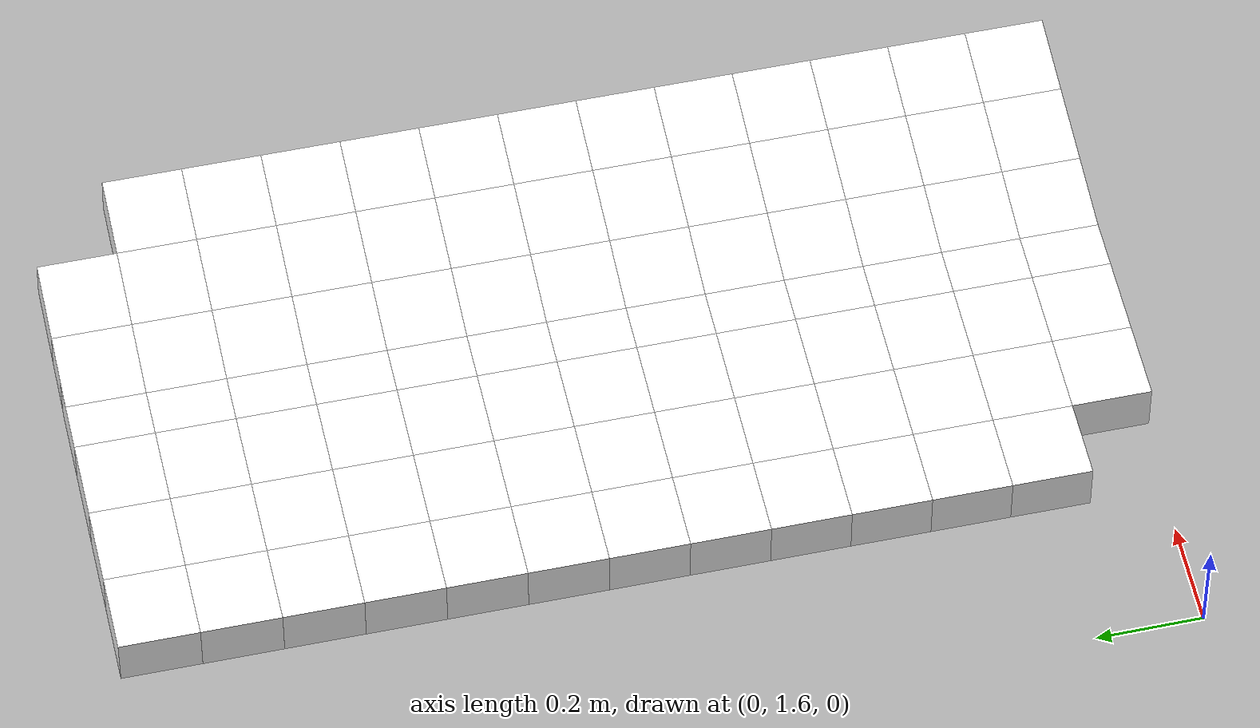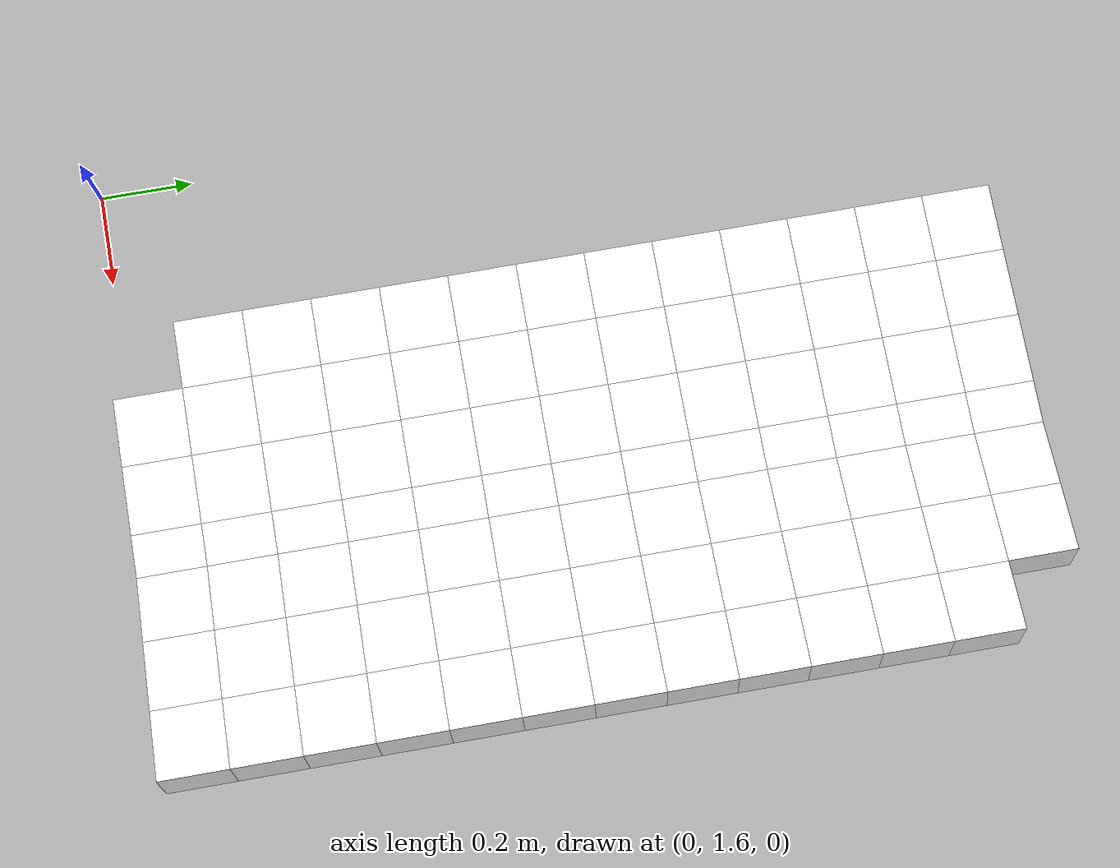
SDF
<sdf version="1.7">
 <world name="default">
  <include><uri>model://sun</uri></include>
  <model name="static_environment">
   <static>true</static>
   <link name="region_157">
    <pose>0.5499999999999994 1.65 0.0 0.0 0.0 0.0</pose>
    <collision name="region_157_collision">
     <geometry><box><size>0.15 0.15 0.1</size></box></geometry>
     <surface><friction><ode><mu>1.0</mu><mu2>1.0</mu2></ode></friction></surface>
    </collision>
    <visual name="region_157_visual">
     <geometry><box><size>0.15 0.15 0.1</size></box></geometry>
     <material><ambient>1.0 1.0 1.0 1.0</ambient><diffuse>1.0 1.0 1.0 1.0</diffuse></material>
    </visual>
   </link>
   <link name="region_158">
    <pose>0.6999999999999993 1.65 0.0 0.0 0.0 0.0</pose>
    <collision name="region_158_collision">
     <geometry><box><size>0.15 0.15 0.1</size></box></geometry>
     <surface><friction><ode><mu>1.0</mu><mu2>1.0</mu2></ode></friction></surface>
    </collision>
    <visual name="region_158_visual">
     <geometry><box><size>0.15 0.15 0.1</size></box></geometry>
     <material><ambient>1.0 1.0 1.0 1.0</ambient><diffuse>1.0 1.0 1.0 1.0</diffuse></material>
    </visual>
   </link>
   <link name="region_159">
    <pose>0.8499999999999992 1.65 0.0 0.0 0.0 0.0</pose>
    <collision name="region_159_collision">
     <geometry><box><size>0.15 0.15 0.1</size></box></geometry>
     <surface><friction><ode><mu>1.0</mu><mu2>1.0</mu2></ode></friction></surface>
    </collision>
    <visual name="region_159_visual">
     <geometry><box><size>0.15 0.15 0.1</size></box></geometry>
     <material><ambient>1.0 1.0 1.0 1.0</ambient><diffuse>1.0 1.0 1.0 1.0</diffuse></material>
    </visual>
   </link>
   <link name="region_176">
    <pose>0.39999999999999947 1.7999999999999998 0.0 0.0 0.0 0.0</pose>
    <collision name="region_176_collision">
     <geometry><box><size>0.15 0.15 0.1</size></box></geometry>
     <surface><friction><ode><mu>1.0</mu><mu2>1.0</mu2></ode></friction></surface>
    </collision>
    <visual name="region_176_visual">
     <geometry><box><size>0.15 0.15 0.1</size></box></geometry>
     <material><ambient>1.0 1.0 1.0 1.0</ambient><diffuse>1.0 1.0 1.0 1.0</diffuse></material>
    </visual>
   </link>
   <link name="region_177">
    <pose>0.5499999999999994 1.7999999999999998 0.0 0.0 0.0 0.0</pose>
    <collision name="region_177_collision">
     <geometry><box><size>0.15 0.15 0.1</size></box></geometry>
     <surface><friction><ode><mu>1.0</mu><mu2>1.0</mu2></ode></friction></surface>
    </collision>
    <visual name="region_177_visual">
     <geometry><box><size>0.15 0.15 0.1</size></box></geometry>
     <material><ambient>1.0 1.0 1.0 1.0</ambient><diffuse>1.0 1.0 1.0 1.0</diffuse></material>
    </visual>
   </link>
   <link name="region_178">
    <pose>0.6999999999999993 1.7999999999999998 0.0 0.0 0.0 0.0</pose>
    <collision name="region_178_collision">
     <geometry><box><size>0.15 0.15 0.1</size></box></geometry>
     <surface><friction><ode><mu>1.0</mu><mu2>1.0</mu2></ode></friction></surface>
    </collision>
    <visual name="region_178_visual">
     <geometry><box><size>0.15 0.15 0.1</size></box></geometry>
     <material><ambient>1.0 1.0 1.0 1.0</ambient><diffuse>1.0 1.0 1.0 1.0</diffuse></material>
    </visual>
   </link>
   <link name="region_179">
    <pose>0.8499999999999992 1.7999999999999998 0.0 0.0 0.0 0.0</pose>
    <collision name="region_179_collision">
     <geometry><box><size>0.15 0.15 0.1</size></box></geometry>
     <surface><friction><ode><mu>1.0</mu><mu2>1.0</mu2></ode></friction></surface>
    </collision>
    <visual name="region_179_visual">
     <geometry><box><size>0.15 0.15 0.1</size></box></geometry>
     <material><ambient>1.0 1.0 1.0 1.0</ambient><diffuse>1.0 1.0 1.0 1.0</diffuse></material>
    </visual>
   </link>
   <link name="region_196">
    <pose>0.39999999999999947 1.9499999999999997 0.0 0.0 0.0 0.0</pose>
    <collision name="region_196_collision">
     <geometry><box><size>0.15 0.15 0.1</size></box></geometry>
     <surface><friction><ode><mu>1.0</mu><mu2>1.0</mu2></ode></friction></surface>
    </collision>
    <visual name="region_196_visual">
     <geometry><box><size>0.15 0.15 0.1</size></box></geometry>
     <material><ambient>1.0 1.0 1.0 1.0</ambient><diffuse>1.0 1.0 1.0 1.0</diffuse></material>
    </visual>
   </link>
   <link name="region_197">
    <pose>0.5499999999999994 1.9499999999999997 0.0 0.0 0.0 0.0</pose>
    <collision name="region_197_collision">
     <geometry><box><size>0.15 0.15 0.1</size></box></geometry>
     <surface><friction><ode><mu>1.0</mu><mu2>1.0</mu2></ode></friction></surface>
    </collision>
    <visual name="region_197_visual">
     <geometry><box><size>0.15 0.15 0.1</size></box></geometry>
     <material><ambient>1.0 1.0 1.0 1.0</ambient><diffuse>1.0 1.0 1.0 1.0</diffuse></material>
    </visual>
   </link>
   <link name="region_198">
    <pose>0.6999999999999993 1.9499999999999997 0.0 0.0 0.0 0.0</pose>
    <collision name="region_198_collision">
     <geometry><box><size>0.15 0.15 0.1</size></box></geometry>
     <surface><friction><ode><mu>1.0</mu><mu2>1.0</mu2></ode></friction></surface>
    </collision>
    <visual name="region_198_visual">
     <geometry><box><size>0.15 0.15 0.1</size></box></geometry>
     <material><ambient>1.0 1.0 1.0 1.0</ambient><diffuse>1.0 1.0 1.0 1.0</diffuse></material>
    </visual>
   </link>
   <link name="region_199">
    <pose>0.8499999999999992 1.9499999999999997 0.0 0.0 0.0 0.0</pose>
    <collision name="region_199_collision">
     <geometry><box><size>0.15 0.15 0.1</size></box></geometry>
     <surface><friction><ode><mu>1.0</mu><mu2>1.0</mu2></ode></friction></surface>
    </collision>
    <visual name="region_199_visual">
     <geometry><box><size>0.15 0.15 0.1</size></box></geometry>
     <material><ambient>1.0 1.0 1.0 1.0</ambient><diffuse>1.0 1.0 1.0 1.0</diffuse></material>
    </visual>
   </link>
   <link name="region_216">
    <pose>0.39999999999999947 2.0999999999999996 0.0 0.0 0.0 0.0</pose>
    <collision name="region_216_collision">
     <geometry><box><size>0.15 0.15 0.1</size></box></geometry>
     <surface><friction><ode><mu>1.0</mu><mu2>1.0</mu2></ode></friction></surface>
    </collision>
    <visual name="region_216_visual">
     <geometry><box><size>0.15 0.15 0.1</size></box></geometry>
     <material><ambient>1.0 1.0 1.0 1.0</ambient><diffuse>1.0 1.0 1.0 1.0</diffuse></material>
    </visual>
   </link>
   <link name="region_217">
    <pose>0.5499999999999994 2.0999999999999996 0.0 0.0 0.0 0.0</pose>
    <collision name="region_217_collision">
     <geometry><box><size>0.15 0.15 0.1</size></box></geometry>
     <surface><friction><ode><mu>1.0</mu><mu2>1.0</mu2></ode></friction></surface>
    </collision>
    <visual name="region_217_visual">
     <geometry><box><size>0.15 0.15 0.1</size></box></geometry>
     <material><ambient>1.0 1.0 1.0 1.0</ambient><diffuse>1.0 1.0 1.0 1.0</diffuse></material>
    </visual>
   </link>
   <link name="region_218">
    <pose>0.6999999999999993 2.0999999999999996 0.0 0.0 0.0 0.0</pose>
    <collision name="region_218_collision">
     <geometry><box><size>0.15 0.15 0.1</size></box></geometry>
     <surface><friction><ode><mu>1.0</mu><mu2>1.0</mu2></ode></friction></surface>
    </collision>
    <visual name="region_218_visual">
     <geometry><box><size>0.15 0.15 0.1</size></box></geometry>
     <material><ambient>1.0 1.0 1.0 1.0</ambient><diffuse>1.0 1.0 1.0 1.0</diffuse></material>
    </visual>
   </link>
   <link name="region_219">
    <pose>0.8499999999999992 2.0999999999999996 0.0 0.0 0.0 0.0</pose>
    <collision name="region_219_collision">
     <geometry><box><size>0.15 0.15 0.1</size></box></geometry>
     <surface><friction><ode><mu>1.0</mu><mu2>1.0</mu2></ode></friction></surface>
    </collision>
    <visual name="region_219_visual">
     <geometry><box><size>0.15 0.15 0.1</size></box></geometry>
     <material><ambient>1.0 1.0 1.0 1.0</ambient><diffuse>1.0 1.0 1.0 1.0</diffuse></material>
    </visual>
   </link>
   <link name="region_236">
    <pose>0.39999999999999947 2.2499999999999996 0.0 0.0 0.0 0.0</pose>
    <collision name="region_236_collision">
     <geometry><box><size>0.15 0.15 0.1</size></box></geometry>
     <surface><friction><ode><mu>1.0</mu><mu2>1.0</mu2></ode></friction></surface>
    </collision>
    <visual name="region_236_visual">
     <geometry><box><size>0.15 0.15 0.1</size></box></geometry>
     <material><ambient>1.0 1.0 1.0 1.0</ambient><diffuse>1.0 1.0 1.0 1.0</diffuse></material>
    </visual>
   </link>
   <link name="region_237">
    <pose>0.5499999999999994 2.2499999999999996 0.0 0.0 0.0 0.0</pose>
    <collision name="region_237_collision">
     <geometry><box><size>0.15 0.15 0.1</size></box></geometry>
     <surface><friction><ode><mu>1.0</mu><mu2>1.0</mu2></ode></friction></surface>
    </collision>
    <visual name="region_237_visual">
     <geometry><box><size>0.15 0.15 0.1</size></box></geometry>
     <material><ambient>1.0 1.0 1.0 1.0</ambient><diffuse>1.0 1.0 1.0 1.0</diffuse></material>
    </visual>
   </link>
   <link name="region_238">
    <pose>0.6999999999999993 2.2499999999999996 0.0 0.0 0.0 0.0</pose>
    <collision name="region_238_collision">
     <geometry><box><size>0.15 0.15 0.1</size></box></geometry>
     <surface><friction><ode><mu>1.0</mu><mu2>1.0</mu2></ode></friction></surface>
    </collision>
    <visual name="region_238_visual">
     <geometry><box><size>0.15 0.15 0.1</size></box></geometry>
     <material><ambient>1.0 1.0 1.0 1.0</ambient><diffuse>1.0 1.0 1.0 1.0</diffuse></material>
    </visual>
   </link>
   <link name="region_239">
    <pose>0.8499999999999992 2.2499999999999996 0.0 0.0 0.0 0.0</pose>
    <collision name="region_239_collision">
     <geometry><box><size>0.15 0.15 0.1</size></box></geometry>
     <surface><friction><ode><mu>1.0</mu><mu2>1.0</mu2></ode></friction></surface>
    </collision>
    <visual name="region_239_visual">
     <geometry><box><size>0.15 0.15 0.1</size></box></geometry>
     <material><ambient>1.0 1.0 1.0 1.0</ambient><diffuse>1.0 1.0 1.0 1.0</diffuse></material>
    </visual>
   </link>
   <link name="region_256">
    <pose>0.39999999999999947 2.3999999999999995 0.0 0.0 0.0 0.0</pose>
    <collision name="region_256_collision">
     <geometry><box><size>0.15 0.15 0.1</size></box></geometry>
     <surface><friction><ode><mu>1.0</mu><mu2>1.0</mu2></ode></friction></surface>
    </collision>
    <visual name="region_256_visual">
     <geometry><box><size>0.15 0.15 0.1</size></box></geometry>
     <material><ambient>1.0 1.0 1.0 1.0</ambient><diffuse>1.0 1.0 1.0 1.0</diffuse></material>
    </visual>
   </link>
   <link name="region_257">
    <pose>0.5499999999999994 2.3999999999999995 0.0 0.0 0.0 0.0</pose>
    <collision name="region_257_collision">
     <geometry><box><size>0.15 0.15 0.1</size></box></geometry>
     <surface><friction><ode><mu>1.0</mu><mu2>1.0</mu2></ode></friction></surface>
    </collision>
    <visual name="region_257_visual">
     <geometry><box><size>0.15 0.15 0.1</size></box></geometry>
     <material><ambient>1.0 1.0 1.0 1.0</ambient><diffuse>1.0 1.0 1.0 1.0</diffuse></material>
    </visual>
   </link>
   <link name="region_258">
    <pose>0.6999999999999993 2.3999999999999995 0.0 0.0 0.0 0.0</pose>
    <collision name="region_258_collision">
     <geometry><box><size>0.15 0.15 0.1</size></box></geometry>
     <surface><friction><ode><mu>1.0</mu><mu2>1.0</mu2></ode></friction></surface>
    </collision>
    <visual name="region_258_visual">
     <geometry><box><size>0.15 0.15 0.1</size></box></geometry>
     <material><ambient>1.0 1.0 1.0 1.0</ambient><diffuse>1.0 1.0 1.0 1.0</diffuse></material>
    </visual>
   </link>
   <link name="region_259">
    <pose>0.8499999999999992 2.3999999999999995 0.0 0.0 0.0 0.0</pose>
    <collision name="region_259_collision">
     <geometry><box><size>0.15 0.15 0.1</size></box></geometry>
     <surface><friction><ode><mu>1.0</mu><mu2>1.0</mu2></ode></friction></surface>
    </collision>
    <visual name="region_259_visual">
     <geometry><box><size>0.15 0.15 0.1</size></box></geometry>
     <material><ambient>1.0 1.0 1.0 1.0</ambient><diffuse>1.0 1.0 1.0 1.0</diffuse></material>
    </visual>
   </link>
   <link name="region_276">
    <pose>0.39999999999999947 2.5499999999999994 0.0 0.0 0.0 0.0</pose>
    <collision name="region_276_collision">
     <geometry><box><size>0.15 0.15 0.1</size></box></geometry>
     <surface><friction><ode><mu>1.0</mu><mu2>1.0</mu2></ode></friction></surface>
    </collision>
    <visual name="region_276_visual">
     <geometry><box><size>0.15 0.15 0.1</size></box></geometry>
     <material><ambient>1.0 1.0 1.0 1.0</ambient><diffuse>1.0 1.0 1.0 1.0</diffuse></material>
    </visual>
   </link>
   <link name="region_277">
    <pose>0.5499999999999994 2.5499999999999994 0.0 0.0 0.0 0.0</pose>
    <collision name="region_277_collision">
     <geometry><box><size>0.15 0.15 0.1</size></box></geometry>
     <surface><friction><ode><mu>1.0</mu><mu2>1.0</mu2></ode></friction></surface>
    </collision>
    <visual name="region_277_visual">
     <geometry><box><size>0.15 0.15 0.1</size></box></geometry>
     <material><ambient>1.0 1.0 1.0 1.0</ambient><diffuse>1.0 1.0 1.0 1.0</diffuse></material>
    </visual>
   </link>
   <link name="region_278">
    <pose>0.6999999999999993 2.5499999999999994 0.0 0.0 0.0 0.0</pose>
    <collision name="region_278_collision">
     <geometry><box><size>0.15 0.15 0.1</size></box></geometry>
     <surface><friction><ode><mu>1.0</mu><mu2>1.0</mu2></ode></friction></surface>
    </collision>
    <visual name="region_278_visual">
     <geometry><box><size>0.15 0.15 0.1</size></box></geometry>
     <material><ambient>1.0 1.0 1.0 1.0</ambient><diffuse>1.0 1.0 1.0 1.0</diffuse></material>
    </visual>
   </link>
   <link name="region_279">
    <pose>0.8499999999999992 2.5499999999999994 0.0 0.0 0.0 0.0</pose>
    <collision name="region_279_collision">
     <geometry><box><size>0.15 0.15 0.1</size></box></geometry>
     <surface><friction><ode><mu>1.0</mu><mu2>1.0</mu2></ode></friction></surface>
    </collision>
    <visual name="region_279_visual">
     <geometry><box><size>0.15 0.15 0.1</size></box></geometry>
     <material><ambient>1.0 1.0 1.0 1.0</ambient><diffuse>1.0 1.0 1.0 1.0</diffuse></material>
    </visual>
   </link>
   <link name="region_296">
    <pose>0.39999999999999947 2.6999999999999997 0.0 0.0 0.0 0.0</pose>
    <collision name="region_296_collision">
     <geometry><box><size>0.15 0.15 0.1</size></box></geometry>
     <surface><friction><ode><mu>1.0</mu><mu2>1.0</mu2></ode></friction></surface>
    </collision>
    <visual name="region_296_visual">
     <geometry><box><size>0.15 0.15 0.1</size></box></geometry>
     <material><ambient>1.0 1.0 1.0 1.0</ambient><diffuse>1.0 1.0 1.0 1.0</diffuse></material>
    </visual>
   </link>
   <link name="region_297">
    <pose>0.5499999999999994 2.6999999999999997 0.0 0.0 0.0 0.0</pose>
    <collision name="region_297_collision">
     <geometry><box><size>0.15 0.15 0.1</size></box></geometry>
     <surface><friction><ode><mu>1.0</mu><mu2>1.0</mu2></ode></friction></surface>
    </collision>
    <visual name="region_297_visual">
     <geometry><box><size>0.15 0.15 0.1</size></box></geometry>
     <material><ambient>1.0 1.0 1.0 1.0</ambient><diffuse>1.0 1.0 1.0 1.0</diffuse></material>
    </visual>
   </link>
   <link name="region_298">
    <pose>0.6999999999999993 2.6999999999999997 0.0 0.0 0.0 0.0</pose>
    <collision name="region_298_collision">
     <geometry><box><size>0.15 0.15 0.1</size></box></geometry>
     <surface><friction><ode><mu>1.0</mu><mu2>1.0</mu2></ode></friction></surface>
    </collision>
    <visual name="region_298_visual">
     <geometry><box><size>0.15 0.15 0.1</size></box></geometry>
     <material><ambient>1.0 1.0 1.0 1.0</ambient><diffuse>1.0 1.0 1.0 1.0</diffuse></material>
    </visual>
   </link>
   <link name="region_299">
    <pose>0.8499999999999992 2.6999999999999997 0.0 0.0 0.0 0.0</pose>
    <collision name="region_299_collision">
     <geometry><box><size>0.15 0.15 0.1</size></box></geometry>
     <surface><friction><ode><mu>1.0</mu><mu2>1.0</mu2></ode></friction></surface>
    </collision>
    <visual name="region_299_visual">
     <geometry><box><size>0.15 0.15 0.1</size></box></geometry>
     <material><ambient>1.0 1.0 1.0 1.0</ambient><diffuse>1.0 1.0 1.0 1.0</diffuse></material>
    </visual>
   </link>
   <link name="region_316">
    <pose>0.39999999999999947 2.8499999999999996 0.0 0.0 0.0 0.0</pose>
    <collision name="region_316_collision">
     <geometry><box><size>0.15 0.15 0.1</size></box></geometry>
     <surface><friction><ode><mu>1.0</mu><mu2>1.0</mu2></ode></friction></surface>
    </collision>
    <visual name="region_316_visual">
     <geometry><box><size>0.15 0.15 0.1</size></box></geometry>
     <material><ambient>1.0 1.0 1.0 1.0</ambient><diffuse>1.0 1.0 1.0 1.0</diffuse></material>
    </visual>
   </link>
   <link name="region_317">
    <pose>0.5499999999999994 2.8499999999999996 0.0 0.0 0.0 0.0</pose>
    <collision name="region_317_collision">
     <geometry><box><size>0.15 0.15 0.1</size></box></geometry>
     <surface><friction><ode><mu>1.0</mu><mu2>1.0</mu2></ode></friction></surface>
    </collision>
    <visual name="region_317_visual">
     <geometry><box><size>0.15 0.15 0.1</size></box></geometry>
     <material><ambient>1.0 1.0 1.0 1.0</ambient><diffuse>1.0 1.0 1.0 1.0</diffuse></material>
    </visual>
   </link>
   <link name="region_318">
    <pose>0.6999999999999993 2.8499999999999996 0.0 0.0 0.0 0.0</pose>
    <collision name="region_318_collision">
     <geometry><box><size>0.15 0.15 0.1</size></box></geometry>
     <surface><friction><ode><mu>1.0</mu><mu2>1.0</mu2></ode></friction></surface>
    </collision>
    <visual name="region_318_visual">
     <geometry><box><size>0.15 0.15 0.1</size></box></geometry>
     <material><ambient>1.0 1.0 1.0 1.0</ambient><diffuse>1.0 1.0 1.0 1.0</diffuse></material>
    </visual>
   </link>
   <link name="region_319">
    <pose>0.8499999999999992 2.8499999999999996 0.0 0.0 0.0 0.0</pose>
    <collision name="region_319_collision">
     <geometry><box><size>0.15 0.15 0.1</size></box></geometry>
     <surface><friction><ode><mu>1.0</mu><mu2>1.0</mu2></ode></friction></surface>
    </collision>
    <visual name="region_319_visual">
     <geometry><box><size>0.15 0.15 0.1</size></box></geometry>
     <material><ambient>1.0 1.0 1.0 1.0</ambient><diffuse>1.0 1.0 1.0 1.0</diffuse></material>
    </visual>
   </link>
   <link name="region_336">
    <pose>0.39999999999999947 2.9999999999999996 0.0 0.0 0.0 0.0</pose>
    <collision name="region_336_collision">
     <geometry><box><size>0.15 0.15 0.1</size></box></geometry>
     <surface><friction><ode><mu>1.0</mu><mu2>1.0</mu2></ode></friction></surface>
    </collision>
    <visual name="region_336_visual">
     <geometry><box><size>0.15 0.15 0.1</size></box></geometry>
     <material><ambient>1.0 1.0 1.0 1.0</ambient><diffuse>1.0 1.0 1.0 1.0</diffuse></material>
    </visual>
   </link>
   <link name="region_337">
    <pose>0.5499999999999994 2.9999999999999996 0.0 0.0 0.0 0.0</pose>
    <collision name="region_337_collision">
     <geometry><box><size>0.15 0.15 0.1</size></box></geometry>
     <surface><friction><ode><mu>1.0</mu><mu2>1.0</mu2></ode></friction></surface>
    </collision>
    <visual name="region_337_visual">
     <geometry><box><size>0.15 0.15 0.1</size></box></geometry>
     <material><ambient>1.0 1.0 1.0 1.0</ambient><diffuse>1.0 1.0 1.0 1.0</diffuse></material>
    </visual>
   </link>
   <link name="region_338">
    <pose>0.6999999999999993 2.9999999999999996 0.0 0.0 0.0 0.0</pose>
    <collision name="region_338_collision">
     <geometry><box><size>0.15 0.15 0.1</size></box></geometry>
     <surface><friction><ode><mu>1.0</mu><mu2>1.0</mu2></ode></friction></surface>
    </collision>
    <visual name="region_338_visual">
     <geometry><box><size>0.15 0.15 0.1</size></box></geometry>
     <material><ambient>1.0 1.0 1.0 1.0</ambient><diffuse>1.0 1.0 1.0 1.0</diffuse></material>
    </visual>
   </link>
   <link name="region_339">
    <pose>0.8499999999999992 2.9999999999999996 0.0 0.0 0.0 0.0</pose>
    <collision name="region_339_collision">
     <geometry><box><size>0.15 0.15 0.1</size></box></geometry>
     <surface><friction><ode><mu>1.0</mu><mu2>1.0</mu2></ode></friction></surface>
    </collision>
    <visual name="region_339_visual">
     <geometry><box><size>0.15 0.15 0.1</size></box></geometry>
     <material><ambient>1.0 1.0 1.0 1.0</ambient><diffuse>1.0 1.0 1.0 1.0</diffuse></material>
    </visual>
   </link>
   <link name="region_356">
    <pose>0.39999999999999947 3.1499999999999995 0.0 0.0 0.0 0.0</pose>
    <collision name="region_356_collision">
     <geometry><box><size>0.15 0.15 0.1</size></box></geometry>
     <surface><friction><ode><mu>1.0</mu><mu2>1.0</mu2></ode></friction></surface>
    </collision>
    <visual name="region_356_visual">
     <geometry><box><size>0.15 0.15 0.1</size></box></geometry>
     <material><ambient>1.0 1.0 1.0 1.0</ambient><diffuse>1.0 1.0 1.0 1.0</diffuse></material>
    </visual>
   </link>
   <link name="region_357">
    <pose>0.5499999999999994 3.1499999999999995 0.0 0.0 0.0 0.0</pose>
    <collision name="region_357_collision">
     <geometry><box><size>0.15 0.15 0.1</size></box></geometry>
     <surface><friction><ode><mu>1.0</mu><mu2>1.0</mu2></ode></friction></surface>
    </collision>
    <visual name="region_357_visual">
     <geometry><box><size>0.15 0.15 0.1</size></box></geometry>
     <material><ambient>1.0 1.0 1.0 1.0</ambient><diffuse>1.0 1.0 1.0 1.0</diffuse></material>
    </visual>
   </link>
   <link name="region_358">
    <pose>0.6999999999999993 3.1499999999999995 0.0 0.0 0.0 0.0</pose>
    <collision name="region_358_collision">
     <geometry><box><size>0.15 0.15 0.1</size></box></geometry>
     <surface><friction><ode><mu>1.0</mu><mu2>1.0</mu2></ode></friction></surface>
    </collision>
    <visual name="region_358_visual">
     <geometry><box><size>0.15 0.15 0.1</size></box></geometry>
     <material><ambient>1.0 1.0 1.0 1.0</ambient><diffuse>1.0 1.0 1.0 1.0</diffuse></material>
    </visual>
   </link>
   <link name="region_359">
    <pose>0.8499999999999992 3.1499999999999995 0.0 0.0 0.0 0.0</pose>
    <collision name="region_359_collision">
     <geometry><box><size>0.15 0.15 0.1</size></box></geometry>
     <surface><friction><ode><mu>1.0</mu><mu2>1.0</mu2></ode></friction></surface>
    </collision>
    <visual name="region_359_visual">
     <geometry><box><size>0.15 0.15 0.1</size></box></geometry>
     <material><ambient>1.0 1.0 1.0 1.0</ambient><diffuse>1.0 1.0 1.0 1.0</diffuse></material>
    </visual>
   </link>
   <link name="region_376">
    <pose>0.39999999999999947 3.2999999999999994 0.0 0.0 0.0 0.0</pose>
    <collision name="region_376_collision">
     <geometry><box><size>0.15 0.15 0.1</size></box></geometry>
     <surface><friction><ode><mu>1.0</mu><mu2>1.0</mu2></ode></friction></surface>
    </collision>
    <visual name="region_376_visual">
     <geometry><box><size>0.15 0.15 0.1</size></box></geometry>
     <material><ambient>1.0 1.0 1.0 1.0</ambient><diffuse>1.0 1.0 1.0 1.0</diffuse></material>
    </visual>
   </link>
   <link name="region_377">
    <pose>0.5499999999999994 3.2999999999999994 0.0 0.0 0.0 0.0</pose>
    <collision name="region_377_collision">
     <geometry><box><size>0.15 0.15 0.1</size></box></geometry>
     <surface><friction><ode><mu>1.0</mu><mu2>1.0</mu2></ode></friction></surface>
    </collision>
    <visual name="region_377_visual">
     <geometry><box><size>0.15 0.15 0.1</size></box></geometry>
     <material><ambient>1.0 1.0 1.0 1.0</ambient><diffuse>1.0 1.0 1.0 1.0</diffuse></material>
    </visual>
   </link>
   <link name="region_378">
    <pose>0.6999999999999993 3.2999999999999994 0.0 0.0 0.0 0.0</pose>
    <collision name="region_378_collision">
     <geometry><box><size>0.15 0.15 0.1</size></box></geometry>
     <surface><friction><ode><mu>1.0</mu><mu2>1.0</mu2></ode></friction></surface>
    </collision>
    <visual name="region_378_visual">
     <geometry><box><size>0.15 0.15 0.1</size></box></geometry>
     <material><ambient>1.0 1.0 1.0 1.0</ambient><diffuse>1.0 1.0 1.0 1.0</diffuse></material>
    </visual>
   </link>
   <link name="region_379">
    <pose>0.8499999999999992 3.2999999999999994 0.0 0.0 0.0 0.0</pose>
    <collision name="region_379_collision">
     <geometry><box><size>0.15 0.15 0.1</size></box></geometry>
     <surface><friction><ode><mu>1.0</mu><mu2>1.0</mu2></ode></friction></surface>
    </collision>
    <visual name="region_379_visual">
     <geometry><box><size>0.15 0.15 0.1</size></box></geometry>
     <material><ambient>1.0 1.0 1.0 1.0</ambient><diffuse>1.0 1.0 1.0 1.0</diffuse></material>
    </visual>
   </link>
   <link name="region_396">
    <pose>0.39999999999999947 3.4499999999999993 0.0 0.0 0.0 0.0</pose>
    <collision name="region_396_collision">
     <geometry><box><size>0.15 0.15 0.1</size></box></geometry>
     <surface><friction><ode><mu>1.0</mu><mu2>1.0</mu2></ode></friction></surface>
    </collision>
    <visual name="region_396_visual">
     <geometry><box><size>0.15 0.15 0.1</size></box></geometry>
     <material><ambient>1.0 1.0 1.0 1.0</ambient><diffuse>1.0 1.0 1.0 1.0</diffuse></material>
    </visual>
   </link>
   <link name="region_397">
    <pose>0.5499999999999994 3.4499999999999993 0.0 0.0 0.0 0.0</pose>
    <collision name="region_397_collision">
     <geometry><box><size>0.15 0.15 0.1</size></box></geometry>
     <surface><friction><ode><mu>1.0</mu><mu2>1.0</mu2></ode></friction></surface>
    </collision>
    <visual name="region_397_visual">
     <geometry><box><size>0.15 0.15 0.1</size></box></geometry>
     <material><ambient>1.0 1.0 1.0 1.0</ambient><diffuse>1.0 1.0 1.0 1.0</diffuse></material>
    </visual>
   </link>
   <link name="region_398">
    <pose>0.6999999999999993 3.4499999999999993 0.0 0.0 0.0 0.0</pose>
    <collision name="region_398_collision">
     <geometry><box><size>0.15 0.15 0.1</size></box></geometry>
     <surface><friction><ode><mu>1.0</mu><mu2>1.0</mu2></ode></friction></surface>
    </collision>
    <visual name="region_398_visual">
     <geometry><box><size>0.15 0.15 0.1</size></box></geometry>
     <material><ambient>1.0 1.0 1.0 1.0</ambient><diffuse>1.0 1.0 1.0 1.0</diffuse></material>
    </visual>
   </link>
   <link name="region_399">
    <pose>0.8499999999999992 3.4499999999999993 0.0 0.0 0.0 0.0</pose>
    <collision name="region_399_collision">
     <geometry><box><size>0.15 0.15 0.1</size></box></geometry>
     <surface><friction><ode><mu>1.0</mu><mu2>1.0</mu2></ode></friction></surface>
    </collision>
    <visual name="region_399_visual">
     <geometry><box><size>0.15 0.15 0.1</size></box></geometry>
     <material><ambient>1.0 1.0 1.0 1.0</ambient><diffuse>1.0 1.0 1.0 1.0</diffuse></material>
    </visual>
   </link>
   <link name="region_470">
    <pose>0.9427610316211048 1.65 0.01255032956896146 0.0 -0.175 0.0</pose>
    <collision name="region_470_collision">
     <geometry><box><size>0.15 0.15 0.1</size></box></geometry>
     <surface><friction><ode><mu>1.0</mu><mu2>1.0</mu2></ode></friction></surface>
    </collision>
    <visual name="region_470_visual">
     <geometry><box><size>0.15 0.15 0.1</size></box></geometry>
     <material><ambient>1.0 1.0 1.0 1.0</ambient><diffuse>1.0 1.0 1.0 1.0</diffuse></material>
    </visual>
   </link>
   <link name="region_471">
    <pose>1.0904700124568447 1.65 0.03866655020800086 0.0 -0.175 0.0</pose>
    <collision name="region_471_collision">
     <geometry><box><size>0.15 0.15 0.1</size></box></geometry>
     <surface><friction><ode><mu>1.0</mu><mu2>1.0</mu2></ode></friction></surface>
    </collision>
    <visual name="region_471_visual">
     <geometry><box><size>0.15 0.15 0.1</size></box></geometry>
     <material><ambient>1.0 1.0 1.0 1.0</ambient><diffuse>1.0 1.0 1.0 1.0</diffuse></material>
    </visual>
   </link>
   <link name="region_472">
    <pose>1.2381789932925846 1.65 0.06478277084704026 0.0 -0.175 0.0</pose>
    <collision name="region_472_collision">
     <geometry><box><size>0.15 0.15 0.1</size></box></geometry>
     <surface><friction><ode><mu>1.0</mu><mu2>1.0</mu2></ode></friction></surface>
    </collision>
    <visual name="region_472_visual">
     <geometry><box><size>0.15 0.15 0.1</size></box></geometry>
     <material><ambient>1.0 1.0 1.0 1.0</ambient><diffuse>1.0 1.0 1.0 1.0</diffuse></material>
    </visual>
   </link>
   <link name="region_480">
    <pose>0.9427610316211048 1.7999999999999998 0.01255032956896146 0.0 -0.175 0.0</pose>
    <collision name="region_480_collision">
     <geometry><box><size>0.15 0.15 0.1</size></box></geometry>
     <surface><friction><ode><mu>1.0</mu><mu2>1.0</mu2></ode></friction></surface>
    </collision>
    <visual name="region_480_visual">
     <geometry><box><size>0.15 0.15 0.1</size></box></geometry>
     <material><ambient>1.0 1.0 1.0 1.0</ambient><diffuse>1.0 1.0 1.0 1.0</diffuse></material>
    </visual>
   </link>
   <link name="region_481">
    <pose>1.0904700124568447 1.7999999999999998 0.03866655020800086 0.0 -0.175 0.0</pose>
    <collision name="region_481_collision">
     <geometry><box><size>0.15 0.15 0.1</size></box></geometry>
     <surface><friction><ode><mu>1.0</mu><mu2>1.0</mu2></ode></friction></surface>
    </collision>
    <visual name="region_481_visual">
     <geometry><box><size>0.15 0.15 0.1</size></box></geometry>
     <material><ambient>1.0 1.0 1.0 1.0</ambient><diffuse>1.0 1.0 1.0 1.0</diffuse></material>
    </visual>
   </link>
   <link name="region_482">
    <pose>1.2381789932925846 1.7999999999999998 0.06478277084704026 0.0 -0.175 0.0</pose>
    <collision name="region_482_collision">
     <geometry><box><size>0.15 0.15 0.1</size></box></geometry>
     <surface><friction><ode><mu>1.0</mu><mu2>1.0</mu2></ode></friction></surface>
    </collision>
    <visual name="region_482_visual">
     <geometry><box><size>0.15 0.15 0.1</size></box></geometry>
     <material><ambient>1.0 1.0 1.0 1.0</ambient><diffuse>1.0 1.0 1.0 1.0</diffuse></material>
    </visual>
   </link>
   <link name="region_490">
    <pose>0.9427610316211048 1.9499999999999997 0.01255032956896146 0.0 -0.175 0.0</pose>
    <collision name="region_490_collision">
     <geometry><box><size>0.15 0.15 0.1</size></box></geometry>
     <surface><friction><ode><mu>1.0</mu><mu2>1.0</mu2></ode></friction></surface>
    </collision>
    <visual name="region_490_visual">
     <geometry><box><size>0.15 0.15 0.1</size></box></geometry>
     <material><ambient>1.0 1.0 1.0 1.0</ambient><diffuse>1.0 1.0 1.0 1.0</diffuse></material>
    </visual>
   </link>
   <link name="region_491">
    <pose>1.0904700124568447 1.9499999999999997 0.03866655020800086 0.0 -0.175 0.0</pose>
    <collision name="region_491_collision">
     <geometry><box><size>0.15 0.15 0.1</size></box></geometry>
     <surface><friction><ode><mu>1.0</mu><mu2>1.0</mu2></ode></friction></surface>
    </collision>
    <visual name="region_491_visual">
     <geometry><box><size>0.15 0.15 0.1</size></box></geometry>
     <material><ambient>1.0 1.0 1.0 1.0</ambient><diffuse>1.0 1.0 1.0 1.0</diffuse></material>
    </visual>
   </link>
   <link name="region_492">
    <pose>1.2381789932925846 1.9499999999999997 0.06478277084704026 0.0 -0.175 0.0</pose>
    <collision name="region_492_collision">
     <geometry><box><size>0.15 0.15 0.1</size></box></geometry>
     <surface><friction><ode><mu>1.0</mu><mu2>1.0</mu2></ode></friction></surface>
    </collision>
    <visual name="region_492_visual">
     <geometry><box><size>0.15 0.15 0.1</size></box></geometry>
     <material><ambient>1.0 1.0 1.0 1.0</ambient><diffuse>1.0 1.0 1.0 1.0</diffuse></material>
    </visual>
   </link>
   <link name="region_500">
    <pose>0.9427610316211048 2.0999999999999996 0.01255032956896146 0.0 -0.175 0.0</pose>
    <collision name="region_500_collision">
     <geometry><box><size>0.15 0.15 0.1</size></box></geometry>
     <surface><friction><ode><mu>1.0</mu><mu2>1.0</mu2></ode></friction></surface>
    </collision>
    <visual name="region_500_visual">
     <geometry><box><size>0.15 0.15 0.1</size></box></geometry>
     <material><ambient>1.0 1.0 1.0 1.0</ambient><diffuse>1.0 1.0 1.0 1.0</diffuse></material>
    </visual>
   </link>
   <link name="region_501">
    <pose>1.0904700124568447 2.0999999999999996 0.03866655020800086 0.0 -0.175 0.0</pose>
    <collision name="region_501_collision">
     <geometry><box><size>0.15 0.15 0.1</size></box></geometry>
     <surface><friction><ode><mu>1.0</mu><mu2>1.0</mu2></ode></friction></surface>
    </collision>
    <visual name="region_501_visual">
     <geometry><box><size>0.15 0.15 0.1</size></box></geometry>
     <material><ambient>1.0 1.0 1.0 1.0</ambient><diffuse>1.0 1.0 1.0 1.0</diffuse></material>
    </visual>
   </link>
   <link name="region_502">
    <pose>1.2381789932925846 2.0999999999999996 0.06478277084704026 0.0 -0.175 0.0</pose>
    <collision name="region_502_collision">
     <geometry><box><size>0.15 0.15 0.1</size></box></geometry>
     <surface><friction><ode><mu>1.0</mu><mu2>1.0</mu2></ode></friction></surface>
    </collision>
    <visual name="region_502_visual">
     <geometry><box><size>0.15 0.15 0.1</size></box></geometry>
     <material><ambient>1.0 1.0 1.0 1.0</ambient><diffuse>1.0 1.0 1.0 1.0</diffuse></material>
    </visual>
   </link>
   <link name="region_510">
    <pose>0.9427610316211048 2.2499999999999996 0.01255032956896146 0.0 -0.175 0.0</pose>
    <collision name="region_510_collision">
     <geometry><box><size>0.15 0.15 0.1</size></box></geometry>
     <surface><friction><ode><mu>1.0</mu><mu2>1.0</mu2></ode></friction></surface>
    </collision>
    <visual name="region_510_visual">
     <geometry><box><size>0.15 0.15 0.1</size></box></geometry>
     <material><ambient>1.0 1.0 1.0 1.0</ambient><diffuse>1.0 1.0 1.0 1.0</diffuse></material>
    </visual>
   </link>
   <link name="region_511">
    <pose>1.0904700124568447 2.2499999999999996 0.03866655020800086 0.0 -0.175 0.0</pose>
    <collision name="region_511_collision">
     <geometry><box><size>0.15 0.15 0.1</size></box></geometry>
     <surface><friction><ode><mu>1.0</mu><mu2>1.0</mu2></ode></friction></surface>
    </collision>
    <visual name="region_511_visual">
     <geometry><box><size>0.15 0.15 0.1</size></box></geometry>
     <material><ambient>1.0 1.0 1.0 1.0</ambient><diffuse>1.0 1.0 1.0 1.0</diffuse></material>
    </visual>
   </link>
   <link name="region_512">
    <pose>1.2381789932925846 2.2499999999999996 0.06478277084704026 0.0 -0.175 0.0</pose>
    <collision name="region_512_collision">
     <geometry><box><size>0.15 0.15 0.1</size></box></geometry>
     <surface><friction><ode><mu>1.0</mu><mu2>1.0</mu2></ode></friction></surface>
    </collision>
    <visual name="region_512_visual">
     <geometry><box><size>0.15 0.15 0.1</size></box></geometry>
     <material><ambient>1.0 1.0 1.0 1.0</ambient><diffuse>1.0 1.0 1.0 1.0</diffuse></material>
    </visual>
   </link>
   <link name="region_520">
    <pose>0.9427610316211048 2.3999999999999995 0.01255032956896146 0.0 -0.175 0.0</pose>
    <collision name="region_520_collision">
     <geometry><box><size>0.15 0.15 0.1</size></box></geometry>
     <surface><friction><ode><mu>1.0</mu><mu2>1.0</mu2></ode></friction></surface>
    </collision>
    <visual name="region_520_visual">
     <geometry><box><size>0.15 0.15 0.1</size></box></geometry>
     <material><ambient>1.0 1.0 1.0 1.0</ambient><diffuse>1.0 1.0 1.0 1.0</diffuse></material>
    </visual>
   </link>
   <link name="region_521">
    <pose>1.0904700124568447 2.3999999999999995 0.03866655020800086 0.0 -0.175 0.0</pose>
    <collision name="region_521_collision">
     <geometry><box><size>0.15 0.15 0.1</size></box></geometry>
     <surface><friction><ode><mu>1.0</mu><mu2>1.0</mu2></ode></friction></surface>
    </collision>
    <visual name="region_521_visual">
     <geometry><box><size>0.15 0.15 0.1</size></box></geometry>
     <material><ambient>1.0 1.0 1.0 1.0</ambient><diffuse>1.0 1.0 1.0 1.0</diffuse></material>
    </visual>
   </link>
   <link name="region_522">
    <pose>1.2381789932925846 2.3999999999999995 0.06478277084704026 0.0 -0.175 0.0</pose>
    <collision name="region_522_collision">
     <geometry><box><size>0.15 0.15 0.1</size></box></geometry>
     <surface><friction><ode><mu>1.0</mu><mu2>1.0</mu2></ode></friction></surface>
    </collision>
    <visual name="region_522_visual">
     <geometry><box><size>0.15 0.15 0.1</size></box></geometry>
     <material><ambient>1.0 1.0 1.0 1.0</ambient><diffuse>1.0 1.0 1.0 1.0</diffuse></material>
    </visual>
   </link>
   <link name="region_530">
    <pose>0.9427610316211048 2.5499999999999994 0.01255032956896146 0.0 -0.175 0.0</pose>
    <collision name="region_530_collision">
     <geometry><box><size>0.15 0.15 0.1</size></box></geometry>
     <surface><friction><ode><mu>1.0</mu><mu2>1.0</mu2></ode></friction></surface>
    </collision>
    <visual name="region_530_visual">
     <geometry><box><size>0.15 0.15 0.1</size></box></geometry>
     <material><ambient>1.0 1.0 1.0 1.0</ambient><diffuse>1.0 1.0 1.0 1.0</diffuse></material>
    </visual>
   </link>
   <link name="region_531">
    <pose>1.0904700124568447 2.5499999999999994 0.03866655020800086 0.0 -0.175 0.0</pose>
    <collision name="region_531_collision">
     <geometry><box><size>0.15 0.15 0.1</size></box></geometry>
     <surface><friction><ode><mu>1.0</mu><mu2>1.0</mu2></ode></friction></surface>
    </collision>
    <visual name="region_531_visual">
     <geometry><box><size>0.15 0.15 0.1</size></box></geometry>
     <material><ambient>1.0 1.0 1.0 1.0</ambient><diffuse>1.0 1.0 1.0 1.0</diffuse></material>
    </visual>
   </link>
   <link name="region_532">
    <pose>1.2381789932925846 2.5499999999999994 0.06478277084704026 0.0 -0.175 0.0</pose>
    <collision name="region_532_collision">
     <geometry><box><size>0.15 0.15 0.1</size></box></geometry>
     <surface><friction><ode><mu>1.0</mu><mu2>1.0</mu2></ode></friction></surface>
    </collision>
    <visual name="region_532_visual">
     <geometry><box><size>0.15 0.15 0.1</size></box></geometry>
     <material><ambient>1.0 1.0 1.0 1.0</ambient><diffuse>1.0 1.0 1.0 1.0</diffuse></material>
    </visual>
   </link>
   <link name="region_540">
    <pose>0.9427610316211048 2.6999999999999997 0.01255032956896146 0.0 -0.175 0.0</pose>
    <collision name="region_540_collision">
     <geometry><box><size>0.15 0.15 0.1</size></box></geometry>
     <surface><friction><ode><mu>1.0</mu><mu2>1.0</mu2></ode></friction></surface>
    </collision>
    <visual name="region_540_visual">
     <geometry><box><size>0.15 0.15 0.1</size></box></geometry>
     <material><ambient>1.0 1.0 1.0 1.0</ambient><diffuse>1.0 1.0 1.0 1.0</diffuse></material>
    </visual>
   </link>
   <link name="region_541">
    <pose>1.0904700124568447 2.6999999999999997 0.03866655020800086 0.0 -0.175 0.0</pose>
    <collision name="region_541_collision">
     <geometry><box><size>0.15 0.15 0.1</size></box></geometry>
     <surface><friction><ode><mu>1.0</mu><mu2>1.0</mu2></ode></friction></surface>
    </collision>
    <visual name="region_541_visual">
     <geometry><box><size>0.15 0.15 0.1</size></box></geometry>
     <material><ambient>1.0 1.0 1.0 1.0</ambient><diffuse>1.0 1.0 1.0 1.0</diffuse></material>
    </visual>
   </link>
   <link name="region_542">
    <pose>1.2381789932925846 2.6999999999999997 0.06478277084704026 0.0 -0.175 0.0</pose>
    <collision name="region_542_collision">
     <geometry><box><size>0.15 0.15 0.1</size></box></geometry>
     <surface><friction><ode><mu>1.0</mu><mu2>1.0</mu2></ode></friction></surface>
    </collision>
    <visual name="region_542_visual">
     <geometry><box><size>0.15 0.15 0.1</size></box></geometry>
     <material><ambient>1.0 1.0 1.0 1.0</ambient><diffuse>1.0 1.0 1.0 1.0</diffuse></material>
    </visual>
   </link>
   <link name="region_550">
    <pose>0.9427610316211048 2.8499999999999996 0.01255032956896146 0.0 -0.175 0.0</pose>
    <collision name="region_550_collision">
     <geometry><box><size>0.15 0.15 0.1</size></box></geometry>
     <surface><friction><ode><mu>1.0</mu><mu2>1.0</mu2></ode></friction></surface>
    </collision>
    <visual name="region_550_visual">
     <geometry><box><size>0.15 0.15 0.1</size></box></geometry>
     <material><ambient>1.0 1.0 1.0 1.0</ambient><diffuse>1.0 1.0 1.0 1.0</diffuse></material>
    </visual>
   </link>
   <link name="region_551">
    <pose>1.0904700124568447 2.8499999999999996 0.03866655020800086 0.0 -0.175 0.0</pose>
    <collision name="region_551_collision">
     <geometry><box><size>0.15 0.15 0.1</size></box></geometry>
     <surface><friction><ode><mu>1.0</mu><mu2>1.0</mu2></ode></friction></surface>
    </collision>
    <visual name="region_551_visual">
     <geometry><box><size>0.15 0.15 0.1</size></box></geometry>
     <material><ambient>1.0 1.0 1.0 1.0</ambient><diffuse>1.0 1.0 1.0 1.0</diffuse></material>
    </visual>
   </link>
   <link name="region_552">
    <pose>1.2381789932925846 2.8499999999999996 0.06478277084704026 0.0 -0.175 0.0</pose>
    <collision name="region_552_collision">
     <geometry><box><size>0.15 0.15 0.1</size></box></geometry>
     <surface><friction><ode><mu>1.0</mu><mu2>1.0</mu2></ode></friction></surface>
    </collision>
    <visual name="region_552_visual">
     <geometry><box><size>0.15 0.15 0.1</size></box></geometry>
     <material><ambient>1.0 1.0 1.0 1.0</ambient><diffuse>1.0 1.0 1.0 1.0</diffuse></material>
    </visual>
   </link>
   <link name="region_560">
    <pose>0.9427610316211048 2.9999999999999996 0.01255032956896146 0.0 -0.175 0.0</pose>
    <collision name="region_560_collision">
     <geometry><box><size>0.15 0.15 0.1</size></box></geometry>
     <surface><friction><ode><mu>1.0</mu><mu2>1.0</mu2></ode></friction></surface>
    </collision>
    <visual name="region_560_visual">
     <geometry><box><size>0.15 0.15 0.1</size></box></geometry>
     <material><ambient>1.0 1.0 1.0 1.0</ambient><diffuse>1.0 1.0 1.0 1.0</diffuse></material>
    </visual>
   </link>
   <link name="region_561">
    <pose>1.0904700124568447 2.9999999999999996 0.03866655020800086 0.0 -0.175 0.0</pose>
    <collision name="region_561_collision">
     <geometry><box><size>0.15 0.15 0.1</size></box></geometry>
     <surface><friction><ode><mu>1.0</mu><mu2>1.0</mu2></ode></friction></surface>
    </collision>
    <visual name="region_561_visual">
     <geometry><box><size>0.15 0.15 0.1</size></box></geometry>
     <material><ambient>1.0 1.0 1.0 1.0</ambient><diffuse>1.0 1.0 1.0 1.0</diffuse></material>
    </visual>
   </link>
   <link name="region_562">
    <pose>1.2381789932925846 2.9999999999999996 0.06478277084704026 0.0 -0.175 0.0</pose>
    <collision name="region_562_collision">
     <geometry><box><size>0.15 0.15 0.1</size></box></geometry>
     <surface><friction><ode><mu>1.0</mu><mu2>1.0</mu2></ode></friction></surface>
    </collision>
    <visual name="region_562_visual">
     <geometry><box><size>0.15 0.15 0.1</size></box></geometry>
     <material><ambient>1.0 1.0 1.0 1.0</ambient><diffuse>1.0 1.0 1.0 1.0</diffuse></material>
    </visual>
   </link>
   <link name="region_570">
    <pose>0.9427610316211048 3.1499999999999995 0.01255032956896146 0.0 -0.175 0.0</pose>
    <collision name="region_570_collision">
     <geometry><box><size>0.15 0.15 0.1</size></box></geometry>
     <surface><friction><ode><mu>1.0</mu><mu2>1.0</mu2></ode></friction></surface>
    </collision>
    <visual name="region_570_visual">
     <geometry><box><size>0.15 0.15 0.1</size></box></geometry>
     <material><ambient>1.0 1.0 1.0 1.0</ambient><diffuse>1.0 1.0 1.0 1.0</diffuse></material>
    </visual>
   </link>
   <link name="region_571">
    <pose>1.0904700124568447 3.1499999999999995 0.03866655020800086 0.0 -0.175 0.0</pose>
    <collision name="region_571_collision">
     <geometry><box><size>0.15 0.15 0.1</size></box></geometry>
     <surface><friction><ode><mu>1.0</mu><mu2>1.0</mu2></ode></friction></surface>
    </collision>
    <visual name="region_571_visual">
     <geometry><box><size>0.15 0.15 0.1</size></box></geometry>
     <material><ambient>1.0 1.0 1.0 1.0</ambient><diffuse>1.0 1.0 1.0 1.0</diffuse></material>
    </visual>
   </link>
   <link name="region_572">
    <pose>1.2381789932925846 3.1499999999999995 0.06478277084704026 0.0 -0.175 0.0</pose>
    <collision name="region_572_collision">
     <geometry><box><size>0.15 0.15 0.1</size></box></geometry>
     <surface><friction><ode><mu>1.0</mu><mu2>1.0</mu2></ode></friction></surface>
    </collision>
    <visual name="region_572_visual">
     <geometry><box><size>0.15 0.15 0.1</size></box></geometry>
     <material><ambient>1.0 1.0 1.0 1.0</ambient><diffuse>1.0 1.0 1.0 1.0</diffuse></material>
    </visual>
   </link>
   <link name="region_580">
    <pose>0.9427610316211048 3.2999999999999994 0.01255032956896146 0.0 -0.175 0.0</pose>
    <collision name="region_580_collision">
     <geometry><box><size>0.15 0.15 0.1</size></box></geometry>
     <surface><friction><ode><mu>1.0</mu><mu2>1.0</mu2></ode></friction></surface>
    </collision>
    <visual name="region_580_visual">
     <geometry><box><size>0.15 0.15 0.1</size></box></geometry>
     <material><ambient>1.0 1.0 1.0 1.0</ambient><diffuse>1.0 1.0 1.0 1.0</diffuse></material>
    </visual>
   </link>
   <link name="region_581">
    <pose>1.0904700124568447 3.2999999999999994 0.03866655020800086 0.0 -0.175 0.0</pose>
    <collision name="region_581_collision">
     <geometry><box><size>0.15 0.15 0.1</size></box></geometry>
     <surface><friction><ode><mu>1.0</mu><mu2>1.0</mu2></ode></friction></surface>
    </collision>
    <visual name="region_581_visual">
     <geometry><box><size>0.15 0.15 0.1</size></box></geometry>
     <material><ambient>1.0 1.0 1.0 1.0</ambient><diffuse>1.0 1.0 1.0 1.0</diffuse></material>
    </visual>
   </link>
   <link name="region_582">
    <pose>1.2381789932925846 3.2999999999999994 0.06478277084704026 0.0 -0.175 0.0</pose>
    <collision name="region_582_collision">
     <geometry><box><size>0.15 0.15 0.1</size></box></geometry>
     <surface><friction><ode><mu>1.0</mu><mu2>1.0</mu2></ode></friction></surface>
    </collision>
    <visual name="region_582_visual">
     <geometry><box><size>0.15 0.15 0.1</size></box></geometry>
     <material><ambient>1.0 1.0 1.0 1.0</ambient><diffuse>1.0 1.0 1.0 1.0</diffuse></material>
    </visual>
   </link>
   <link name="region_590">
    <pose>0.9427610316211048 3.4499999999999993 0.01255032956896146 0.0 -0.175 0.0</pose>
    <collision name="region_590_collision">
     <geometry><box><size>0.15 0.15 0.1</size></box></geometry>
     <surface><friction><ode><mu>1.0</mu><mu2>1.0</mu2></ode></friction></surface>
    </collision>
    <visual name="region_590_visual">
     <geometry><box><size>0.15 0.15 0.1</size></box></geometry>
     <material><ambient>1.0 1.0 1.0 1.0</ambient><diffuse>1.0 1.0 1.0 1.0</diffuse></material>
    </visual>
   </link>
   <link name="region_591">
    <pose>1.0904700124568447 3.4499999999999993 0.03866655020800086 0.0 -0.175 0.0</pose>
    <collision name="region_591_collision">
     <geometry><box><size>0.15 0.15 0.1</size></box></geometry>
     <surface><friction><ode><mu>1.0</mu><mu2>1.0</mu2></ode></friction></surface>
    </collision>
    <visual name="region_591_visual">
     <geometry><box><size>0.15 0.15 0.1</size></box></geometry>
     <material><ambient>1.0 1.0 1.0 1.0</ambient><diffuse>1.0 1.0 1.0 1.0</diffuse></material>
    </visual>
   </link>
  </model>
 </world>
</sdf>
